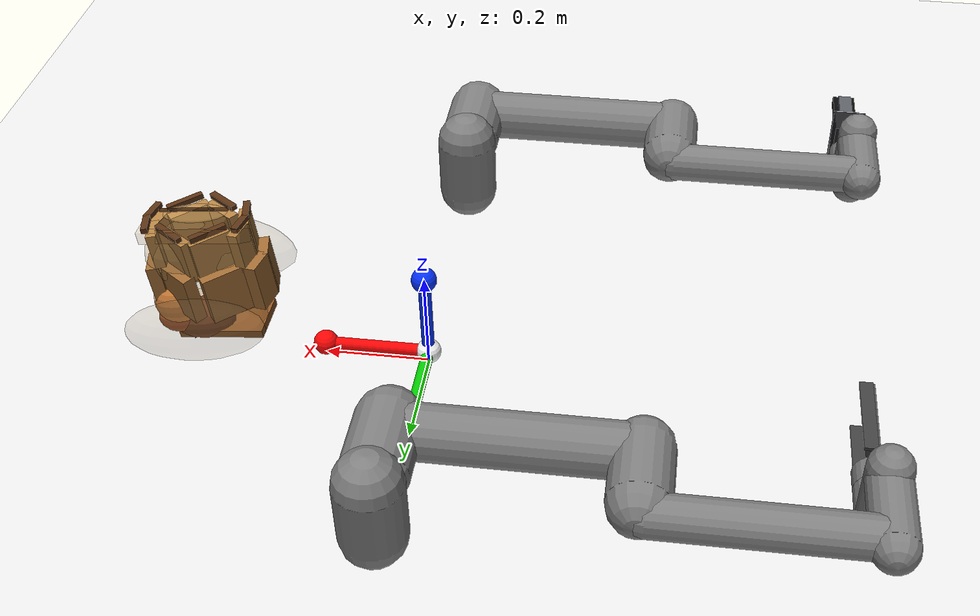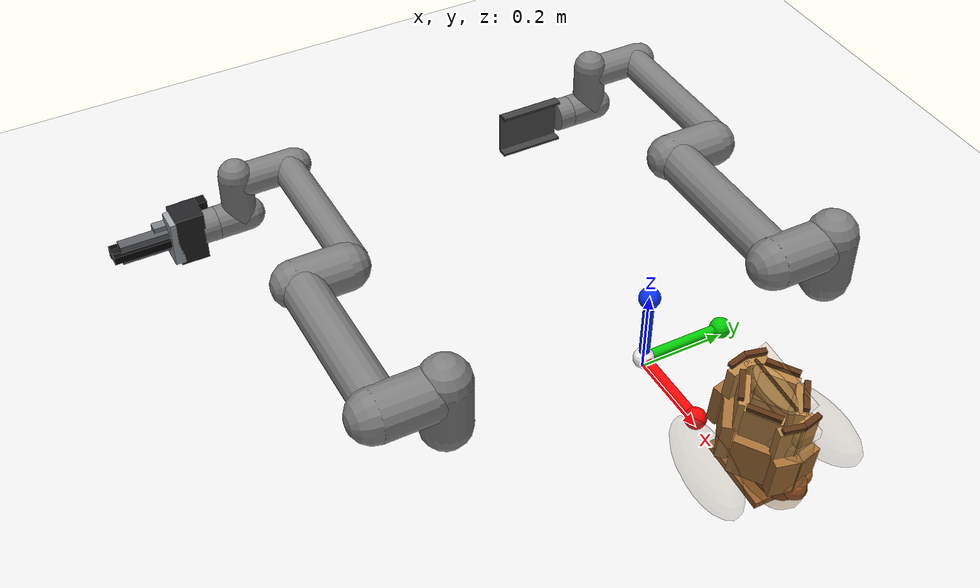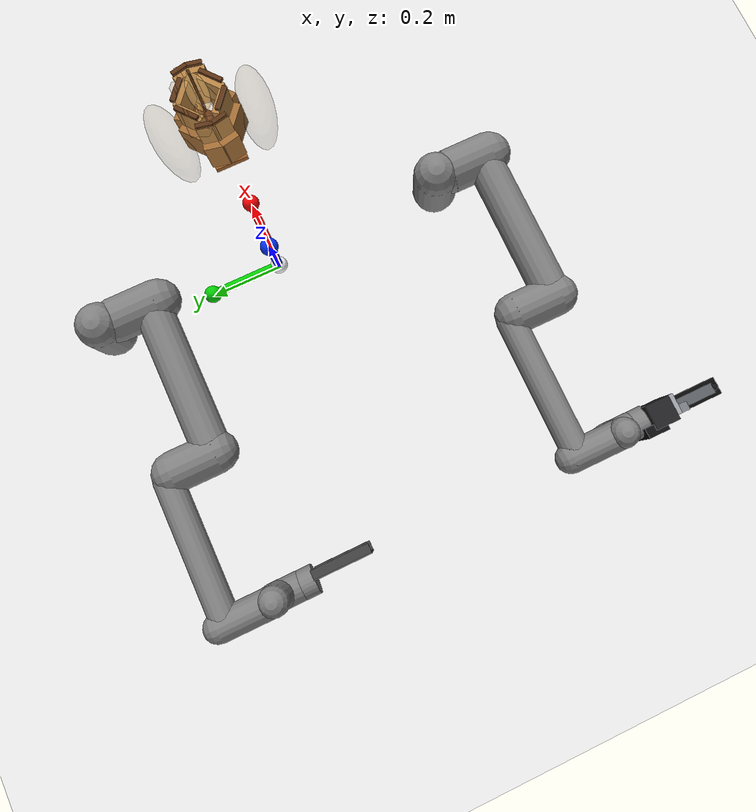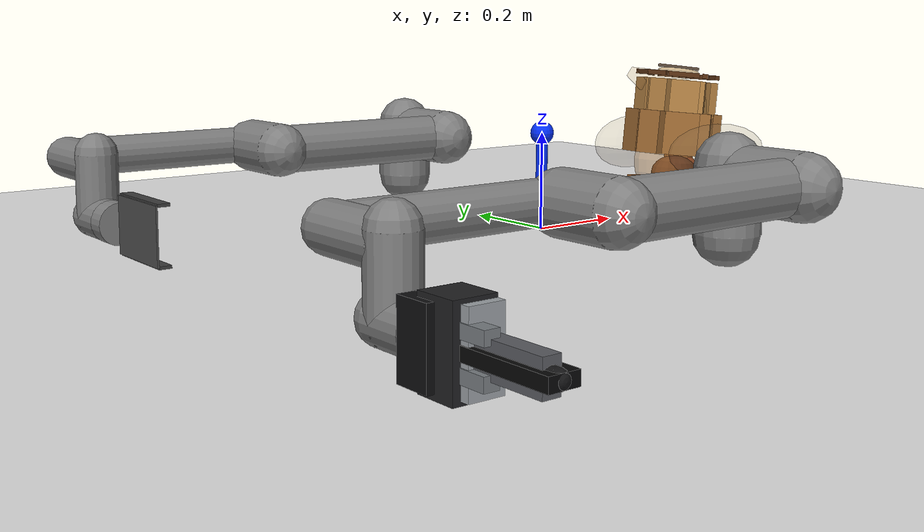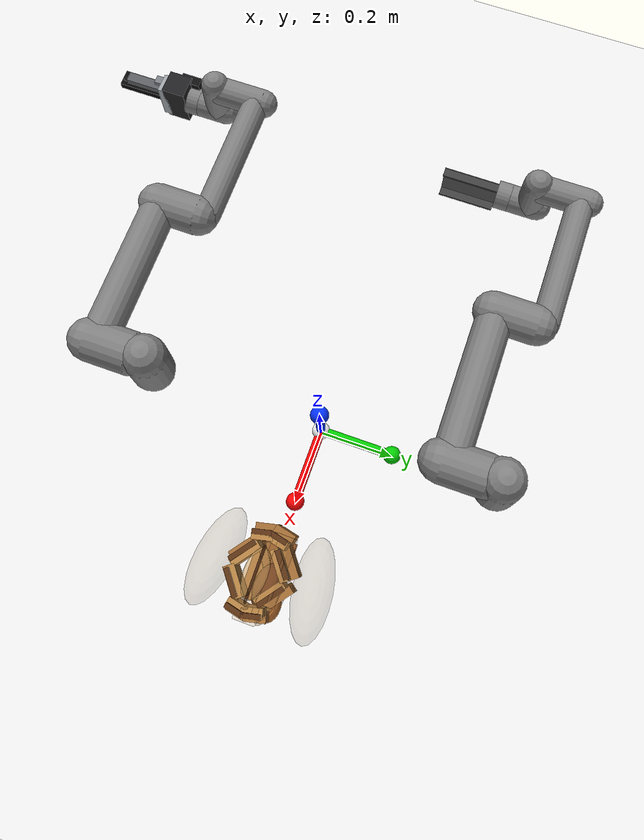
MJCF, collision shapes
<mujoco model="dual_ur5_sealed_articulated_sack_v2_eccentric_fill">
  <compiler angle="degree" meshdir="D:\Michael\2025\01.Research\01.Parceldetection\16.Pybullet\mujoco_menagerie\universal_robots_ur5e\assets" autolimits="true" inertiafromgeom="true" />
  <option integrator="implicitfast" timestep="0.001000" gravity="0 0 -9.81" solver="Newton" iterations="120" ls_iterations="30" jacobian="sparse" cone="elliptic" impratio="10.0" />
  <size memory="512M" nconmax="8000" />
  <statistic center="0.55 0 0.45" extent="1.6" />
  <visual>
    <headlight diffuse="0.6 0.6 0.6" ambient="0.1 0.1 0.1" specular="0 0 0" />
    <rgba haze="0.15 0.25 0.35 1" />
    <global azimuth="120" elevation="-20" offwidth="1280" offheight="820" />
  </visual>
  <asset>
    <material class="ur5e" name="black" rgba="0.033 0.033 0.033 1" />
    <material class="ur5e" name="jointgray" rgba="0.278 0.278 0.278 1" />
    <material class="ur5e" name="linkgray" rgba="0.82 0.82 0.82 1" />
    <material class="ur5e" name="urblue" rgba="0.49 0.678 0.8 1" />
    <mesh file="base_0.obj" />
    <mesh file="base_1.obj" />
    <mesh file="shoulder_0.obj" />
    <mesh file="shoulder_1.obj" />
    <mesh file="shoulder_2.obj" />
    <mesh file="upperarm_0.obj" />
    <mesh file="upperarm_1.obj" />
    <mesh file="upperarm_2.obj" />
    <mesh file="upperarm_3.obj" />
    <mesh file="forearm_0.obj" />
    <mesh file="forearm_1.obj" />
    <mesh file="forearm_2.obj" />
    <mesh file="forearm_3.obj" />
    <mesh file="wrist1_0.obj" />
    <mesh file="wrist1_1.obj" />
    <mesh file="wrist1_2.obj" />
    <mesh file="wrist2_0.obj" />
    <mesh file="wrist2_1.obj" />
    <mesh file="wrist2_2.obj" />
    <mesh file="wrist3.obj" />
  </asset>
  <default>
    <default class="ur5e">
      <material specular="0.5" shininess="0.25" />
      <joint axis="0 1 0" range="-360.000269 360.000269" armature="0.1" />
      <general gaintype="fixed" biastype="affine" ctrlrange="-6.2831 6.2831" gainprm="2000" biasprm="0 -2000 -400" forcerange="-150 150" />
      <default class="size3">
        <default class="size3_limited">
          <joint range="-179.994691 179.994691" />
          <general ctrlrange="-3.1415 3.1415" />
        </default>
      </default>
      <default class="size1">
        <general gainprm="500" biasprm="0 -500 -100" forcerange="-28 28" />
      </default>
      <default class="visual">
        <geom type="mesh" contype="0" conaffinity="0" group="2" />
      </default>
      <default class="collision">
        <geom type="capsule" group="3" />
        <default class="eef_collision">
          <geom type="cylinder" />
        </default>
      </default>
      <site size="0.001" rgba="0.5 0.5 0.5 0.3" group="4" />
    </default>
  </default>
  <worldbody>
    <light name="main_light" pos="0 0 1.8" dir="0 0 -1" directional="true" />
    <geom name="floor" type="plane" size="2 2 0.05" rgba="0.92 0.92 0.92 1" friction="0.9 0.02 0.002" condim="4" />
    <camera name="overview" pos="1.65 0 1.0" xyaxes="0 1 0 -0.42 0 0.91" />
    <camera name="front" pos="1.02 0 0.42" xyaxes="0 1 0 -0.22 0 0.98" />
    <body name="world_origin_axes" pos="0 0 0">
      <geom name="origin_axis_marker" type="sphere" pos="0 0 0.024" size="0.024" rgba="1 1 1 1" contype="0" conaffinity="0" group="0" />
      <geom name="origin_axis_x" type="capsule" fromto="0 0 0.024 0.20 0 0.024" size="0.012" rgba="1 0.02 0.02 1" contype="0" conaffinity="0" group="0" />
      <geom name="origin_axis_x_end" type="sphere" pos="0.20 0 0.024" size="0.024" rgba="1 0.02 0.02 1" contype="0" conaffinity="0" group="0" />
      <geom name="origin_axis_y" type="capsule" fromto="0 0 0.024 0 0.20 0.024" size="0.012" rgba="0.02 0.8 0.02 1" contype="0" conaffinity="0" group="0" />
      <geom name="origin_axis_y_end" type="sphere" pos="0 0.20 0.024" size="0.024" rgba="0.02 0.8 0.02 1" contype="0" conaffinity="0" group="0" />
      <geom name="origin_axis_z" type="capsule" fromto="0 0 0.024 0 0 0.20" size="0.012" rgba="0.02 0.2 1 1" contype="0" conaffinity="0" group="0" />
      <geom name="origin_axis_z_end" type="sphere" pos="0 0 0.20" size="0.024" rgba="0.02 0.2 1 1" contype="0" conaffinity="0" group="0" />
    </body>
    <body name="left_base" quat="0 0 0 -1" childclass="ur5e" pos="0.000000 -0.480000 0.000000">
      <inertial mass="4.0" pos="0 0 0" diaginertia="0.00443333156 0.00443333156 0.0072" />
      <geom mesh="base_0" material="black" class="visual" />
      <geom mesh="base_1" material="jointgray" class="visual" />
      <body name="left_shoulder_link" pos="0 0 0.163">
        <inertial mass="3.7" pos="0 0 0" diaginertia="0.0102675 0.0102675 0.00666" />
        <joint name="left_shoulder_pan_joint" class="size3" axis="0 0 1" />
        <geom mesh="shoulder_0" material="urblue" class="visual" />
        <geom mesh="shoulder_1" material="black" class="visual" />
        <geom mesh="shoulder_2" material="jointgray" class="visual" />
        <geom class="collision" size="0.06 0.06" pos="0 0 -0.04" />
        <body name="left_upper_arm_link" pos="0 0.138 0" quat="1 0 1 0">
          <inertial mass="8.393" pos="0 0 0.2125" diaginertia="0.133886 0.133886 0.0151074" />
          <joint name="left_shoulder_lift_joint" class="size3" />
          <geom mesh="upperarm_0" material="linkgray" class="visual" />
          <geom mesh="upperarm_1" material="black" class="visual" />
          <geom mesh="upperarm_2" material="jointgray" class="visual" />
          <geom mesh="upperarm_3" material="urblue" class="visual" />
          <geom class="collision" pos="0 -0.04 0" quat="1 1 0 0" size="0.06 0.06" />
          <geom class="collision" size="0.05 0.2" pos="0 0 0.2" />
          <body name="left_forearm_link" pos="0 -0.131 0.425">
            <inertial mass="2.275" pos="0 0 0.196" diaginertia="0.0311796 0.0311796 0.004095" />
            <joint name="left_elbow_joint" class="size3_limited" />
            <geom mesh="forearm_0" material="urblue" class="visual" />
            <geom mesh="forearm_1" material="linkgray" class="visual" />
            <geom mesh="forearm_2" material="black" class="visual" />
            <geom mesh="forearm_3" material="jointgray" class="visual" />
            <geom class="collision" pos="0 0.08 0" quat="1 1 0 0" size="0.055 0.06" />
            <geom class="collision" size="0.038 0.19" pos="0 0 0.2" />
            <body name="left_wrist_1_link" pos="0 0 0.392" quat="1 0 1 0">
              <inertial mass="1.219" pos="0 0.127 0" diaginertia="0.0025599 0.0025599 0.0021942" />
              <joint name="left_wrist_1_joint" class="size1" />
              <geom mesh="wrist1_0" material="black" class="visual" />
              <geom mesh="wrist1_1" material="urblue" class="visual" />
              <geom mesh="wrist1_2" material="jointgray" class="visual" />
              <geom class="collision" pos="0 0.05 0" quat="1 1 0 0" size="0.04 0.07" />
              <body name="left_wrist_2_link" pos="0 0.127 0">
                <inertial mass="1.219" pos="0 0 0.1" diaginertia="0.0025599 0.0025599 0.0021942" />
                <joint name="left_wrist_2_joint" axis="0 0 1" class="size1" />
                <geom mesh="wrist2_0" material="black" class="visual" />
                <geom mesh="wrist2_1" material="urblue" class="visual" />
                <geom mesh="wrist2_2" material="jointgray" class="visual" />
                <geom class="collision" size="0.04 0.06" pos="0 0 0.04" />
                <geom class="collision" pos="0 0.02 0.1" quat="1 1 0 0" size="0.04 0.04" />
                <body name="left_wrist_3_link" pos="0 0 0.1">
                  <inertial mass="0.1889" pos="0 0.0771683 0" quat="1 0 0 1" diaginertia="0.000132134 9.90863e-05 9.90863e-05" />
                  <joint name="left_wrist_3_joint" class="size1" />
                  <geom material="linkgray" mesh="wrist3" class="visual" />
                  <geom class="eef_collision" pos="0 0.08 0" quat="1 1 0 0" size="0.04 0.02" />
                  <site name="left_attachment_site" pos="0 0.1 0" quat="-1 1 0 0" />
                  <body name="left_gripper_base" pos="0 0.10 0" quat="-1 1 0 0">
                    <geom name="left_robotiq_mount" type="box" pos="-0.032 0 0.000" size="0.014 0.056 0.030" rgba="0.06 0.06 0.065 1" contype="0" conaffinity="0" />
                    <geom name="left_gripper_palm" type="box" pos="0 0 0.030" size="0.034 0.064 0.034" rgba="0.13 0.13 0.14 1" contype="0" conaffinity="0" />
                    <geom name="left_robotiq_silver_face" type="box" pos="0.006 0 0.066" size="0.028 0.058 0.012" rgba="0.62 0.64 0.66 1" contype="0" conaffinity="0" />
                    <body name="left_finger_l_body" pos="0 0 0.092">
                      <joint name="left_finger_l" type="slide" axis="0 1 0" limited="true" range="0.010 0.080" damping="22" />
                      <geom name="left_finger_l_outer_knuckle" type="box" pos="-0.012 0.027 -0.030" size="0.012 0.010 0.046" rgba="0.48 0.50 0.52 1" contype="0" conaffinity="0" />
                      <geom name="left_finger_l_inner_link" type="box" pos="0.000 0.017 0.030" size="0.014 0.008 0.072" rgba="0.36 0.37 0.39 1" contype="0" conaffinity="0" />
                      <geom name="left_finger_l_tip_round" type="capsule" fromto="0 0 0.088 0 0 0.112" size="0.014" rgba="0.08 0.08 0.085 1" contype="0" conaffinity="0" />
                      <geom name="left_finger_l_pad" type="box" pos="0 0 0.044" size="0.024 0.0100 0.078" rgba="0.03 0.03 0.032 1" friction="2.4 0.12 0.01" condim="4" margin="0.0015" solref="0.030 1" solimp="0.78 0.94 0.001" />
                    </body>
                    <body name="left_finger_r_body" pos="0 0 0.092">
                      <joint name="left_finger_r" type="slide" axis="0 -1 0" limited="true" range="0.010 0.080" damping="22" />
                      <geom name="left_finger_r_outer_knuckle" type="box" pos="-0.012 -0.027 -0.030" size="0.012 0.010 0.046" rgba="0.48 0.50 0.52 1" contype="0" conaffinity="0" />
                      <geom name="left_finger_r_inner_link" type="box" pos="0.000 -0.017 0.030" size="0.014 0.008 0.072" rgba="0.36 0.37 0.39 1" contype="0" conaffinity="0" />
                      <geom name="left_finger_r_tip_round" type="capsule" fromto="0 0 0.088 0 0 0.112" size="0.014" rgba="0.08 0.08 0.085 1" contype="0" conaffinity="0" />
                      <geom name="left_finger_r_pad" type="box" pos="0 0 0.044" size="0.024 0.0100 0.078" rgba="0.03 0.03 0.032 1" friction="2.4 0.12 0.01" condim="4" margin="0.0015" solref="0.030 1" solimp="0.78 0.94 0.001" />
                    </body>
                    <site name="left_gripper_pinch" pos="0 0 0.150" size="0.006" rgba="1 0 0 1" />
                  </body>
                </body>
              </body>
            </body>
          </body>
        </body>
      </body>
    </body>
    <body name="right_base" quat="0 0 0 -1" childclass="ur5e" pos="0.000000 0.480000 0.000000">
      <inertial mass="4.0" pos="0 0 0" diaginertia="0.00443333156 0.00443333156 0.0072" />
      <geom mesh="base_0" material="black" class="visual" />
      <geom mesh="base_1" material="jointgray" class="visual" />
      <body name="right_shoulder_link" pos="0 0 0.163">
        <inertial mass="3.7" pos="0 0 0" diaginertia="0.0102675 0.0102675 0.00666" />
        <joint name="right_shoulder_pan_joint" class="size3" axis="0 0 1" />
        <geom mesh="shoulder_0" material="urblue" class="visual" />
        <geom mesh="shoulder_1" material="black" class="visual" />
        <geom mesh="shoulder_2" material="jointgray" class="visual" />
        <geom class="collision" size="0.06 0.06" pos="0 0 -0.04" />
        <body name="right_upper_arm_link" pos="0 0.138 0" quat="1 0 1 0">
          <inertial mass="8.393" pos="0 0 0.2125" diaginertia="0.133886 0.133886 0.0151074" />
          <joint name="right_shoulder_lift_joint" class="size3" />
          <geom mesh="upperarm_0" material="linkgray" class="visual" />
          <geom mesh="upperarm_1" material="black" class="visual" />
          <geom mesh="upperarm_2" material="jointgray" class="visual" />
          <geom mesh="upperarm_3" material="urblue" class="visual" />
          <geom class="collision" pos="0 -0.04 0" quat="1 1 0 0" size="0.06 0.06" />
          <geom class="collision" size="0.05 0.2" pos="0 0 0.2" />
          <body name="right_forearm_link" pos="0 -0.131 0.425">
            <inertial mass="2.275" pos="0 0 0.196" diaginertia="0.0311796 0.0311796 0.004095" />
            <joint name="right_elbow_joint" class="size3_limited" />
            <geom mesh="forearm_0" material="urblue" class="visual" />
            <geom mesh="forearm_1" material="linkgray" class="visual" />
            <geom mesh="forearm_2" material="black" class="visual" />
            <geom mesh="forearm_3" material="jointgray" class="visual" />
            <geom class="collision" pos="0 0.08 0" quat="1 1 0 0" size="0.055 0.06" />
            <geom class="collision" size="0.038 0.19" pos="0 0 0.2" />
            <body name="right_wrist_1_link" pos="0 0 0.392" quat="1 0 1 0">
              <inertial mass="1.219" pos="0 0.127 0" diaginertia="0.0025599 0.0025599 0.0021942" />
              <joint name="right_wrist_1_joint" class="size1" />
              <geom mesh="wrist1_0" material="black" class="visual" />
              <geom mesh="wrist1_1" material="urblue" class="visual" />
              <geom mesh="wrist1_2" material="jointgray" class="visual" />
              <geom class="collision" pos="0 0.05 0" quat="1 1 0 0" size="0.04 0.07" />
              <body name="right_wrist_2_link" pos="0 0.127 0">
                <inertial mass="1.219" pos="0 0 0.1" diaginertia="0.0025599 0.0025599 0.0021942" />
                <joint name="right_wrist_2_joint" axis="0 0 1" class="size1" />
                <geom mesh="wrist2_0" material="black" class="visual" />
                <geom mesh="wrist2_1" material="urblue" class="visual" />
                <geom mesh="wrist2_2" material="jointgray" class="visual" />
                <geom class="collision" size="0.04 0.06" pos="0 0 0.04" />
                <geom class="collision" pos="0 0.02 0.1" quat="1 1 0 0" size="0.04 0.04" />
                <body name="right_wrist_3_link" pos="0 0 0.1">
                  <inertial mass="0.1889" pos="0 0.0771683 0" quat="1 0 0 1" diaginertia="0.000132134 9.90863e-05 9.90863e-05" />
                  <joint name="right_wrist_3_joint" class="size1" />
                  <geom material="linkgray" mesh="wrist3" class="visual" />
                  <geom class="eef_collision" pos="0 0.08 0" quat="1 1 0 0" size="0.04 0.02" />
                  <site name="right_attachment_site" pos="0 0.1 0" quat="-1 1 0 0" />
                  <body name="right_scoop_tool" pos="0 0.10 0" euler="90 180 0">
                    <geom name="right_scoop_plate" type="box" pos="0 0 0.080" size="0.002 0.055 0.080" mass="0.055" rgba="0.30 0.30 0.30 1" friction="1.6 0.05 0.01" />
                    <geom name="right_scoop_left_rail" type="box" pos="-0.014 0.055 0.080" size="0.012 0.003 0.080" mass="0.012" rgba="0.25 0.25 0.25 1" />
                    <geom name="right_scoop_right_rail" type="box" pos="-0.014 -0.055 0.080" size="0.012 0.003 0.080" mass="0.012" rgba="0.25 0.25 0.25 1" />
                    <site name="right_scoop_site" pos="-0.004 0 0.080" size="0.006" rgba="0 0 1 1" />
                    <site name="right_scoop_tip_site" pos="-0.004 0 0.160" size="0.005" rgba="0 0.7 1 1" />
                  </body>
                </body>
              </body>
            </body>
          </body>
        </body>
      </body>
    </body>
    <body name="neighbor_left" pos="0.400000 0.125000 0.145000" euler="0 0 8.000">
      <geom friction="1.8 0.12 0.01" condim="4" solref="0.026 1" solimp="0.82 0.96 0.001" name="neighbor_left_geom" type="ellipsoid" size="0.128 0.050 0.060" mass="0.65" rgba="0.50 0.42 0.30 0.05" contype="0" conaffinity="0" />
    </body>
    <body name="neighbor_right" pos="0.400000 -0.125000 0.145000" euler="0 0 -8.000">
      <geom friction="1.8 0.12 0.01" condim="4" solref="0.026 1" solimp="0.82 0.96 0.001" name="neighbor_right_geom" type="ellipsoid" size="0.128 0.050 0.060" mass="0.65" rgba="0.50 0.42 0.30 0.05" contype="0" conaffinity="0" />
    </body>
    <body name="bag_frame" pos="0.400000 0.000000 0.188000" euler="0 6.000000 0">
      <freejoint name="bag_frame_freejoint" />
      <site name="bag_frame_origin" pos="0 0 0" size="0.007" rgba="1 0 0 0.7" />
      <body name="seam_band_00" pos="0.089623 0.019799 0.118000" euler="0 0 102.457354">
        <geom friction="1.25 0.08 0.006" condim="4" solref="0.026 1" solimp="0.82 0.96 0.001" name="seam_band_00_geom" type="box" size="0.022562 0.006000 0.005000" mass="0.016" rgba="0.36 0.20 0.08 0.88" />
        <site name="grasp_seam_00" pos="0 0 0" size="0.005" rgba="1 0.55 0.12 0.75" />
        <site name="grasp_rim_00" pos="0 0 0" size="0.003" rgba="1 0.55 0.12 0.18" />
      </body>
      <body name="seam_band_01" pos="0.037123 0.047799 0.118000" euler="0 0 142.165284">
        <geom friction="1.25 0.08 0.006" condim="4" solref="0.026 1" solimp="0.82 0.96 0.001" name="seam_band_01_geom" type="box" size="0.034216 0.006000 0.005000" mass="0.016" rgba="0.36 0.20 0.08 0.88" />
        <site name="grasp_seam_01" pos="0 0 0" size="0.005" rgba="1 0.55 0.12 0.75" />
        <site name="grasp_rim_01" pos="0 0 0" size="0.003" rgba="1 0.55 0.12 0.18" />
      </body>
      <body name="seam_band_02" pos="-0.037123 0.047799 0.118000" euler="0 0 217.834716">
        <geom friction="1.25 0.08 0.006" condim="4" solref="0.026 1" solimp="0.82 0.96 0.001" name="seam_band_02_geom" type="box" size="0.034216 0.006000 0.005000" mass="0.016" rgba="0.36 0.20 0.08 0.88" />
        <site name="grasp_seam_02" pos="0 0 0" size="0.005" rgba="1 0.55 0.12 0.75" />
        <site name="grasp_rim_02" pos="0 0 0" size="0.003" rgba="1 0.55 0.12 0.18" />
      </body>
      <body name="seam_band_03" pos="-0.089623 0.019799 0.118000" euler="0 0 257.542646">
        <geom friction="1.25 0.08 0.006" condim="4" solref="0.026 1" solimp="0.82 0.96 0.001" name="seam_band_03_geom" type="box" size="0.022562 0.006000 0.005000" mass="0.016" rgba="0.36 0.20 0.08 0.88" />
        <site name="grasp_seam_03" pos="0 0 0" size="0.005" rgba="1 0.55 0.12 0.75" />
        <site name="grasp_rim_03" pos="0 0 0" size="0.003" rgba="1 0.55 0.12 0.18" />
      </body>
      <body name="seam_band_04" pos="-0.089623 -0.019799 0.118000" euler="0 0 -77.542646">
        <geom friction="1.25 0.08 0.006" condim="4" solref="0.026 1" solimp="0.82 0.96 0.001" name="seam_band_04_geom" type="box" size="0.022562 0.006000 0.005000" mass="0.016" rgba="0.36 0.20 0.08 0.88" />
        <site name="grasp_seam_04" pos="0 0 0" size="0.005" rgba="1 0.55 0.12 0.75" />
        <site name="grasp_rim_04" pos="0 0 0" size="0.003" rgba="1 0.55 0.12 0.18" />
      </body>
      <body name="seam_band_05" pos="-0.037123 -0.047799 0.118000" euler="0 0 -37.834716">
        <geom friction="1.25 0.08 0.006" condim="4" solref="0.026 1" solimp="0.82 0.96 0.001" name="seam_band_05_geom" type="box" size="0.034216 0.006000 0.005000" mass="0.016" rgba="0.36 0.20 0.08 0.88" />
        <site name="grasp_seam_05" pos="0 0 0" size="0.005" rgba="1 0.55 0.12 0.75" />
        <site name="grasp_rim_05" pos="0 0 0" size="0.003" rgba="1 0.55 0.12 0.18" />
      </body>
      <body name="seam_band_06" pos="0.037123 -0.047799 0.118000" euler="0 0 37.834716">
        <geom friction="1.25 0.08 0.006" condim="4" solref="0.026 1" solimp="0.82 0.96 0.001" name="seam_band_06_geom" type="box" size="0.034216 0.006000 0.005000" mass="0.016" rgba="0.36 0.20 0.08 0.88" />
        <site name="grasp_seam_06" pos="0 0 0" size="0.005" rgba="1 0.55 0.12 0.75" />
        <site name="grasp_rim_06" pos="0 0 0" size="0.003" rgba="1 0.55 0.12 0.18" />
      </body>
      <body name="seam_band_07" pos="0.089623 -0.019799 0.118000" euler="0 0 77.542646">
        <geom friction="1.25 0.08 0.006" condim="4" solref="0.026 1" solimp="0.82 0.96 0.001" name="seam_band_07_geom" type="box" size="0.022562 0.006000 0.005000" mass="0.016" rgba="0.36 0.20 0.08 0.88" />
        <site name="grasp_seam_07" pos="0 0 0" size="0.005" rgba="1 0.55 0.12 0.75" />
        <site name="grasp_rim_07" pos="0 0 0" size="0.003" rgba="1 0.55 0.12 0.18" />
      </body>
      <body name="shoulder_panel_00" pos="0.089623 0.019799 0.106000" euler="0 0 102.457354">
        <joint name="shoulder_panel_00_hinge" type="hinge" axis="1 0 0" limited="true" range="-38 48" damping="9.0" stiffness="2.6" />
        <geom friction="1.25 0.08 0.006" condim="4" solref="0.026 1" solimp="0.82 0.96 0.001" name="shoulder_panel_00_geom" type="box" pos="0 0.008000 -0.041000" size="0.025069 0.010000 0.041000" mass="0.028" rgba="0.72 0.52 0.27 0.86" />
        <site name="grasp_shoulder_00" pos="0 0.005600 -0.028700" size="0.006" rgba="0.10 0.75 0.25 0.80" />
      </body>
      <body name="shoulder_panel_01" pos="0.037123 0.047799 0.106000" euler="0 0 142.165284">
        <joint name="shoulder_panel_01_hinge" type="hinge" axis="1 0 0" limited="true" range="-38 48" damping="9.0" stiffness="2.6" />
        <geom friction="1.25 0.08 0.006" condim="4" solref="0.026 1" solimp="0.82 0.96 0.001" name="shoulder_panel_01_geom" type="box" pos="0 0.008000 -0.041000" size="0.038018 0.010000 0.041000" mass="0.028" rgba="0.72 0.52 0.27 0.86" />
        <site name="grasp_shoulder_01" pos="0 0.005600 -0.028700" size="0.006" rgba="0.10 0.75 0.25 0.80" />
      </body>
      <body name="shoulder_panel_02" pos="-0.037123 0.047799 0.106000" euler="0 0 217.834716">
        <joint name="shoulder_panel_02_hinge" type="hinge" axis="1 0 0" limited="true" range="-38 48" damping="9.0" stiffness="2.6" />
        <geom friction="1.25 0.08 0.006" condim="4" solref="0.026 1" solimp="0.82 0.96 0.001" name="shoulder_panel_02_geom" type="box" pos="0 0.008000 -0.041000" size="0.038018 0.010000 0.041000" mass="0.028" rgba="0.72 0.52 0.27 0.86" />
        <site name="grasp_shoulder_02" pos="0 0.005600 -0.028700" size="0.006" rgba="0.10 0.75 0.25 0.80" />
      </body>
      <body name="shoulder_panel_03" pos="-0.089623 0.019799 0.106000" euler="0 0 257.542646">
        <joint name="shoulder_panel_03_hinge" type="hinge" axis="1 0 0" limited="true" range="-38 48" damping="9.0" stiffness="2.6" />
        <geom friction="1.25 0.08 0.006" condim="4" solref="0.026 1" solimp="0.82 0.96 0.001" name="shoulder_panel_03_geom" type="box" pos="0 0.008000 -0.041000" size="0.025069 0.010000 0.041000" mass="0.028" rgba="0.72 0.52 0.27 0.86" />
        <site name="grasp_shoulder_03" pos="0 0.005600 -0.028700" size="0.006" rgba="0.10 0.75 0.25 0.80" />
      </body>
      <body name="shoulder_panel_04" pos="-0.089623 -0.019799 0.106000" euler="0 0 -77.542646">
        <joint name="shoulder_panel_04_hinge" type="hinge" axis="1 0 0" limited="true" range="-38 48" damping="9.0" stiffness="2.6" />
        <geom friction="1.25 0.08 0.006" condim="4" solref="0.026 1" solimp="0.82 0.96 0.001" name="shoulder_panel_04_geom" type="box" pos="0 0.008000 -0.041000" size="0.025069 0.010000 0.041000" mass="0.028" rgba="0.72 0.52 0.27 0.86" />
        <site name="grasp_shoulder_04" pos="0 0.005600 -0.028700" size="0.006" rgba="0.10 0.75 0.25 0.80" />
      </body>
      <body name="shoulder_panel_05" pos="-0.037123 -0.047799 0.106000" euler="0 0 -37.834716">
        <joint name="shoulder_panel_05_hinge" type="hinge" axis="1 0 0" limited="true" range="-38 48" damping="9.0" stiffness="2.6" />
        <geom friction="1.25 0.08 0.006" condim="4" solref="0.026 1" solimp="0.82 0.96 0.001" name="shoulder_panel_05_geom" type="box" pos="0 0.008000 -0.041000" size="0.038018 0.010000 0.041000" mass="0.028" rgba="0.72 0.52 0.27 0.86" />
        <site name="grasp_shoulder_05" pos="0 0.005600 -0.028700" size="0.006" rgba="0.10 0.75 0.25 0.80" />
      </body>
      <body name="shoulder_panel_06" pos="0.037123 -0.047799 0.106000" euler="0 0 37.834716">
        <joint name="shoulder_panel_06_hinge" type="hinge" axis="1 0 0" limited="true" range="-38 48" damping="9.0" stiffness="2.6" />
        <geom friction="1.25 0.08 0.006" condim="4" solref="0.026 1" solimp="0.82 0.96 0.001" name="shoulder_panel_06_geom" type="box" pos="0 0.008000 -0.041000" size="0.038018 0.010000 0.041000" mass="0.028" rgba="0.72 0.52 0.27 0.86" />
        <site name="grasp_shoulder_06" pos="0 0.005600 -0.028700" size="0.006" rgba="0.10 0.75 0.25 0.80" />
      </body>
      <body name="shoulder_panel_07" pos="0.089623 -0.019799 0.106000" euler="0 0 77.542646">
        <joint name="shoulder_panel_07_hinge" type="hinge" axis="1 0 0" limited="true" range="-38 48" damping="9.0" stiffness="2.6" />
        <geom friction="1.25 0.08 0.006" condim="4" solref="0.026 1" solimp="0.82 0.96 0.001" name="shoulder_panel_07_geom" type="box" pos="0 0.008000 -0.041000" size="0.025069 0.010000 0.041000" mass="0.028" rgba="0.72 0.52 0.27 0.86" />
        <site name="grasp_shoulder_07" pos="0 0.005600 -0.028700" size="0.006" rgba="0.10 0.75 0.25 0.80" />
      </body>
      <body name="belly_panel_00" pos="0.089623 0.019799 0.035000" euler="0 0 102.457354">
        <joint name="belly_panel_00_hinge" type="hinge" axis="1 0 0" limited="true" range="-46 58" damping="10.5" stiffness="1.8" />
        <geom friction="1.25 0.08 0.006" condim="4" solref="0.026 1" solimp="0.82 0.96 0.001" name="belly_panel_00_geom" type="box" pos="0 -0.009000 -0.047000" size="0.026573 0.012000 0.047000" mass="0.034" rgba="0.64 0.43 0.21 0.88" />
      </body>
      <body name="belly_panel_01" pos="0.037123 0.047799 0.035000" euler="0 0 142.165284">
        <joint name="belly_panel_01_hinge" type="hinge" axis="1 0 0" limited="true" range="-46 58" damping="10.5" stiffness="1.8" />
        <geom friction="1.25 0.08 0.006" condim="4" solref="0.026 1" solimp="0.82 0.96 0.001" name="belly_panel_01_geom" type="box" pos="0 -0.009000 -0.047000" size="0.040299 0.012000 0.047000" mass="0.034" rgba="0.64 0.43 0.21 0.88" />
      </body>
      <body name="belly_panel_02" pos="-0.037123 0.047799 0.035000" euler="0 0 217.834716">
        <joint name="belly_panel_02_hinge" type="hinge" axis="1 0 0" limited="true" range="-46 58" damping="10.5" stiffness="1.8" />
        <geom friction="1.25 0.08 0.006" condim="4" solref="0.026 1" solimp="0.82 0.96 0.001" name="belly_panel_02_geom" type="box" pos="0 -0.009000 -0.047000" size="0.040299 0.012000 0.047000" mass="0.034" rgba="0.64 0.43 0.21 0.88" />
      </body>
      <body name="belly_panel_03" pos="-0.089623 0.019799 0.035000" euler="0 0 257.542646">
        <joint name="belly_panel_03_hinge" type="hinge" axis="1 0 0" limited="true" range="-46 58" damping="10.5" stiffness="1.8" />
        <geom friction="1.25 0.08 0.006" condim="4" solref="0.026 1" solimp="0.82 0.96 0.001" name="belly_panel_03_geom" type="box" pos="0 -0.009000 -0.047000" size="0.026573 0.012000 0.047000" mass="0.034" rgba="0.64 0.43 0.21 0.88" />
      </body>
      <body name="belly_panel_04" pos="-0.089623 -0.019799 0.035000" euler="0 0 -77.542646">
        <joint name="belly_panel_04_hinge" type="hinge" axis="1 0 0" limited="true" range="-46 58" damping="10.5" stiffness="1.8" />
        <geom friction="1.25 0.08 0.006" condim="4" solref="0.026 1" solimp="0.82 0.96 0.001" name="belly_panel_04_geom" type="box" pos="0 -0.009000 -0.047000" size="0.026573 0.012000 0.047000" mass="0.034" rgba="0.64 0.43 0.21 0.88" />
      </body>
      <body name="belly_panel_05" pos="-0.037123 -0.047799 0.035000" euler="0 0 -37.834716">
        <joint name="belly_panel_05_hinge" type="hinge" axis="1 0 0" limited="true" range="-46 58" damping="10.5" stiffness="1.8" />
        <geom friction="1.25 0.08 0.006" condim="4" solref="0.026 1" solimp="0.82 0.96 0.001" name="belly_panel_05_geom" type="box" pos="0 -0.009000 -0.047000" size="0.040299 0.012000 0.047000" mass="0.034" rgba="0.64 0.43 0.21 0.88" />
      </body>
      <body name="belly_panel_06" pos="0.037123 -0.047799 0.035000" euler="0 0 37.834716">
        <joint name="belly_panel_06_hinge" type="hinge" axis="1 0 0" limited="true" range="-46 58" damping="10.5" stiffness="1.8" />
        <geom friction="1.25 0.08 0.006" condim="4" solref="0.026 1" solimp="0.82 0.96 0.001" name="belly_panel_06_geom" type="box" pos="0 -0.009000 -0.047000" size="0.040299 0.012000 0.047000" mass="0.034" rgba="0.64 0.43 0.21 0.88" />
      </body>
      <body name="belly_panel_07" pos="0.089623 -0.019799 0.035000" euler="0 0 77.542646">
        <joint name="belly_panel_07_hinge" type="hinge" axis="1 0 0" limited="true" range="-46 58" damping="10.5" stiffness="1.8" />
        <geom friction="1.25 0.08 0.006" condim="4" solref="0.026 1" solimp="0.82 0.96 0.001" name="belly_panel_07_geom" type="box" pos="0 -0.009000 -0.047000" size="0.026573 0.012000 0.047000" mass="0.034" rgba="0.64 0.43 0.21 0.88" />
      </body>
      <body name="bottom_sling" pos="0 0 -0.122000">
        <geom friction="1.25 0.08 0.006" condim="4" solref="0.026 1" solimp="0.82 0.96 0.001" name="bottom_sling_pad" type="box" size="0.082 0.048 0.008" mass="0.065" rgba="0.58 0.35 0.15 0.78" />
        <geom friction="1.25 0.08 0.006" condim="4" solref="0.026 1" solimp="0.82 0.96 0.001" name="bottom_sling_cross" type="box" euler="0 0 34" size="0.072 0.010 0.010" mass="0.022" rgba="0.46 0.26 0.10 0.74" />
        <site name="bottom_cradle_site" pos="0 0 0" size="0.004" rgba="0.8 0.4 0.1 0.7" />
      </body>
      <body name="fold_root_flap_1" pos="-0.020000 0.030000 0.130000" euler="-56.000000 0 0">
        <joint name="fold_root_flap_1_hinge" type="hinge" axis="1 0 0" limited="true" range="-125 22" damping="7.5" stiffness="2.8" />
        <geom friction="1.25 0.08 0.006" condim="4" solref="0.026 1" solimp="0.82 0.96 0.001" name="fold_root_flap_1_geom" type="box" pos="0 0.026 -0.012" size="0.079305 0.012000 0.026000" mass="0.001" rgba="0.70 0.50 0.27 0.05" contype="0" conaffinity="0" />
        <site name="grasp_fold_1" pos="0 0.026 -0.012" size="0.005" rgba="0.1 0.2 1 0.35" />
        <site name="grasp_fold_root_1" pos="0 0.026 -0.012" size="0.004" rgba="0.1 0.2 1 0.15" />
      </body>
      <body name="fold_root_flap_2" pos="0.030000 0.018000 0.120000" euler="-88.000000 0 0">
        <joint name="fold_root_flap_2_hinge" type="hinge" axis="1 0 0" limited="true" range="-125 22" damping="7.5" stiffness="2.8" />
        <geom friction="1.25 0.08 0.006" condim="4" solref="0.026 1" solimp="0.82 0.96 0.001" name="fold_root_flap_2_geom" type="box" pos="0 0.026 -0.012" size="0.079305 0.012000 0.026000" mass="0.001" rgba="0.70 0.50 0.27 0.05" contype="0" conaffinity="0" />
        <site name="grasp_fold_2" pos="0 0.026 -0.012" size="0.005" rgba="0.1 0.2 1 0.35" />
        <site name="grasp_fold_root_2" pos="0 0.026 -0.012" size="0.004" rgba="0.1 0.2 1 0.15" />
      </body>
      <body name="payload_main" pos="0.040000 0.018000 -0.105000">
        <joint name="payload_main_x" type="slide" axis="1 0 0" limited="true" range="-0.030 0.030" damping="20" stiffness="3.0" />
        <joint name="payload_main_y" type="slide" axis="0 1 0" limited="true" range="-0.026 0.026" damping="20" stiffness="3.0" />
        <joint name="payload_main_z" type="slide" axis="0 0 1" limited="true" range="-0.020 0.020" damping="20" stiffness="3.0" />
        <geom friction="1.25 0.08 0.006" condim="4" solref="0.026 1" solimp="0.82 0.96 0.001" name="payload_main_geom" type="ellipsoid" size="0.064000 0.040000 0.040000" mass="0.4200" rgba="0.42 0.22 0.10 0.72" contype="1" conaffinity="1" />
      </body>
      <body name="payload_aux" pos="0.078000 0.030000 -0.092000">
        <joint name="payload_aux_x" type="slide" axis="1 0 0" limited="true" range="-0.030 0.030" damping="20" stiffness="3.0" />
        <joint name="payload_aux_y" type="slide" axis="0 1 0" limited="true" range="-0.026 0.026" damping="20" stiffness="3.0" />
        <joint name="payload_aux_z" type="slide" axis="0 0 1" limited="true" range="-0.020 0.020" damping="20" stiffness="3.0" />
        <geom friction="1.25 0.08 0.006" condim="4" solref="0.026 1" solimp="0.82 0.96 0.001" name="payload_aux_geom" type="ellipsoid" size="0.042000 0.030000 0.030000" mass="0.1800" rgba="0.60 0.28 0.12 0.68" contype="1" conaffinity="1" />
      </body>
      <body name="side_bulge" pos="0.072000 0.038000 -0.056000">
        <geom friction="1.25 0.08 0.006" condim="4" solref="0.026 1" solimp="0.82 0.96 0.001" name="side_bulge_geom" type="ellipsoid" size="0.042000 0.028000 0.040000" mass="0.045" rgba="0.76 0.46 0.20 0.62" contype="1" conaffinity="1" />
      </body>
      <body name="visual_upper_hull" pos="0.020000 0.010000 0.038000">
        <geom friction="1.25 0.08 0.006" condim="4" solref="0.026 1" solimp="0.82 0.96 0.001" name="visual_upper_hull_geom" type="ellipsoid" size="0.096600 0.051520 0.073600" rgba="0.78 0.62 0.38 0.30" contype="0" conaffinity="0" mass="0.001" />
      </body>
      <body name="visual_lower_hull" pos="0.020000 0.010000 -0.076000">
        <geom friction="1.25 0.08 0.006" condim="4" solref="0.026 1" solimp="0.82 0.96 0.001" name="visual_lower_hull_geom" type="ellipsoid" size="0.111300 0.057680 0.093840" rgba="0.72 0.50 0.25 0.40" contype="0" conaffinity="0" mass="0.001" />
      </body>
      <body name="visual_lower_fill" pos="0.040000 0.018000 -0.105000">
        <geom friction="1.25 0.08 0.006" condim="4" solref="0.026 1" solimp="0.82 0.96 0.001" name="visual_lower_fill_geom" type="ellipsoid" size="0.073600 0.044800 0.042000" rgba="0.42 0.22 0.10 0.34" contype="0" conaffinity="0" mass="0.001" />
      </body>
      <body name="sealed_top_cap_visual" pos="0 0 0.127000">
        <geom friction="1.25 0.08 0.006" condim="4" solref="0.026 1" solimp="0.82 0.96 0.001" name="sealed_top_cap_visual_geom" type="ellipsoid" size="0.060900 0.028000 0.006000" rgba="0.80 0.62 0.36 0.58" contype="0" conaffinity="0" mass="0.001" />
      </body>
      <body name="sealed_top_stitch_visual" pos="0 0 0.135000">
        <geom friction="1.25 0.08 0.006" condim="4" solref="0.026 1" solimp="0.82 0.96 0.001" name="sealed_top_stitch_visual_geom" type="capsule" fromto="-0.064 0 0 0.064 0 0" size="0.0035" rgba="0.24 0.13 0.05 0.76" contype="0" conaffinity="0" mass="0.001" />
      </body>
    </body>
  </worldbody>
  <actuator>
    <general class="size3" name="left_shoulder_pan" joint="left_shoulder_pan_joint" />
    <general class="size3" name="left_shoulder_lift" joint="left_shoulder_lift_joint" />
    <general class="size3_limited" name="left_elbow" joint="left_elbow_joint" />
    <general class="size1" name="left_wrist_1" joint="left_wrist_1_joint" />
    <general class="size1" name="left_wrist_2" joint="left_wrist_2_joint" />
    <general class="size1" name="left_wrist_3" joint="left_wrist_3_joint" />
    <general class="size3" name="right_shoulder_pan" joint="right_shoulder_pan_joint" />
    <general class="size3" name="right_shoulder_lift" joint="right_shoulder_lift_joint" />
    <general class="size3_limited" name="right_elbow" joint="right_elbow_joint" />
    <general class="size1" name="right_wrist_1" joint="right_wrist_1_joint" />
    <general class="size1" name="right_wrist_2" joint="right_wrist_2_joint" />
    <general class="size1" name="right_wrist_3" joint="right_wrist_3_joint" />
    <position name="left_finger_l_act" joint="left_finger_l" ctrlrange="0.010 0.080" kp="450" forcerange="-60 60" />
    <position name="left_finger_r_act" joint="left_finger_r" ctrlrange="0.010 0.080" kp="450" forcerange="-60 60" />
  </actuator>
</mujoco>
